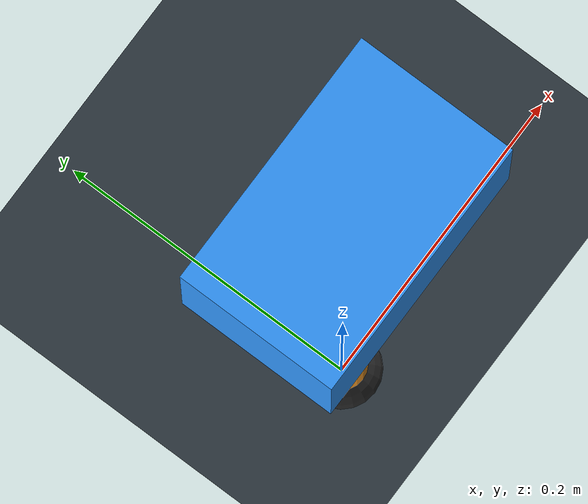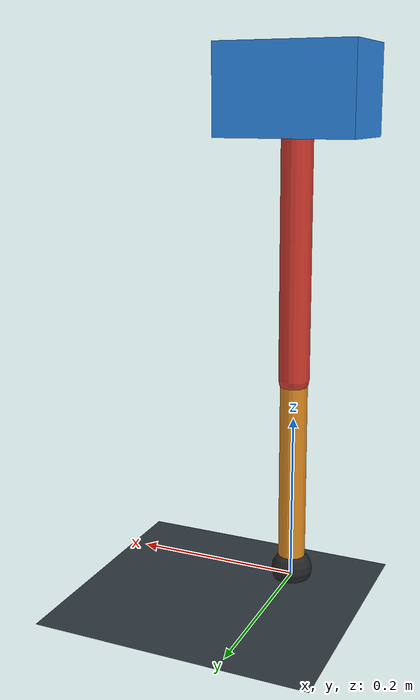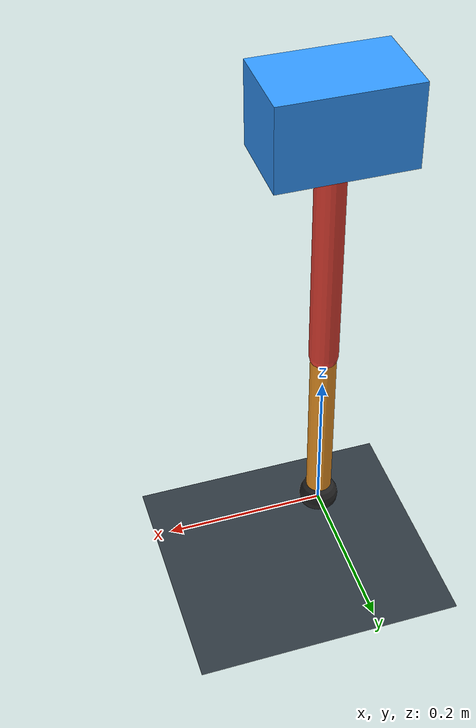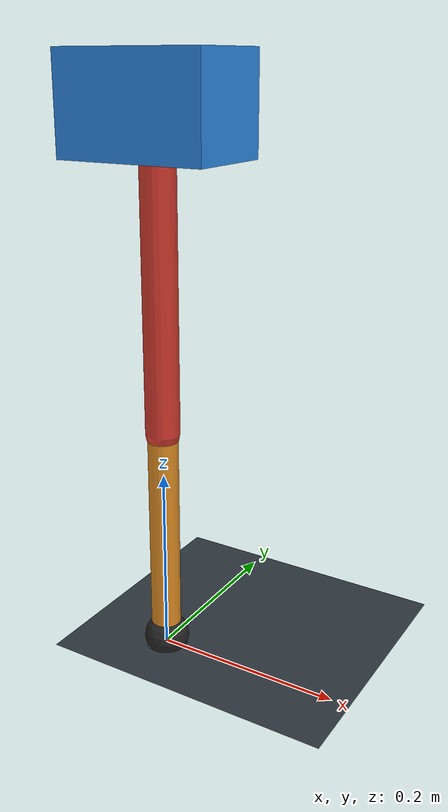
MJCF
<mujoco model="single_axis_two_bar">
  <compiler angle="radian" inertiafromgeom="true"/>
  <option timestep="0.001" integrator="implicitfast" gravity="0 0 -9.81"/>
  <default>
    <joint damping="0.08"/>
    <geom friction="1.2 0.01 0.0001" condim="3"/>
  </default>
  <worldbody>
    <geom name="floor" type="plane" size="5 5 0.1" rgba="0.18 0.22 0.25 1"/>
    <body name="carriage" pos="0 0 0.5737729240666538">
      <joint name="pole_slide" type="slide" axis="0 0 1"/>
      <geom name="payload" type="box" size="0.08 0.05 0.05" mass="3.7313691622431886" rgba="0.2 0.6 1 1"/>
      <body name="thigh" pos="0 0 0">
        <joint name="hip" type="hinge" axis="0 1 0"/>
        <geom name="thigh_link" type="capsule" fromto="0 0 0 0 0 -0.32623476315950656" size="0.018" mass="0.2324465795632077" rgba="0.9 0.25 0.2 1"/>
        <body name="shank" pos="0 0 -0.32623476315950656">
          <joint name="knee" type="hinge" axis="0 1 0"/>
          <geom name="shank_link" type="capsule" fromto="0 0 0 0 0 -0.23951051938343548" size="0.016" mass="0.1706544099129817" rgba="0.95 0.6 0.15 1"/>
          <geom name="foot" type="sphere" pos="0 0 -0.23951051938343548" size="0.025" mass="0.03" rgba="0.15 0.15 0.15 1"/>
          <site name="toe" pos="0 0 -0.23951051938343548" size="0.008"/>
        </body>
      </body>
    </body>
  </worldbody>
  <actuator>
    <motor name="hip_motor" joint="hip" ctrlrange="-55.61760783580341 55.61760783580341"/>
    <motor name="knee_motor" joint="knee" ctrlrange="-127.9767087116114 127.9767087116114"/>
  </actuator>
</mujoco>
